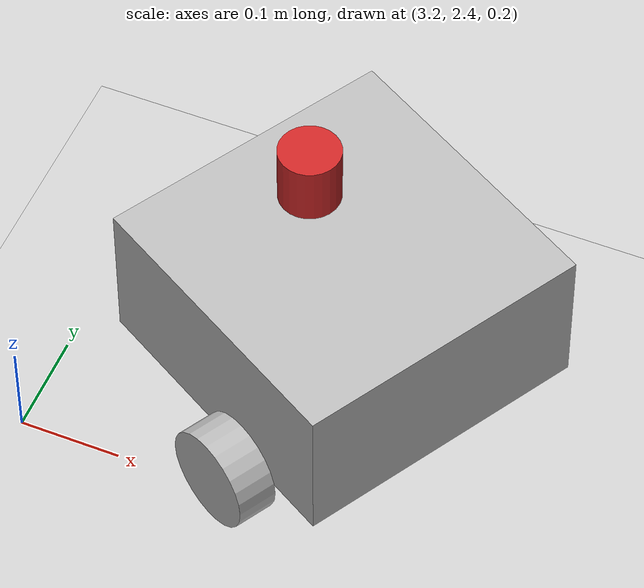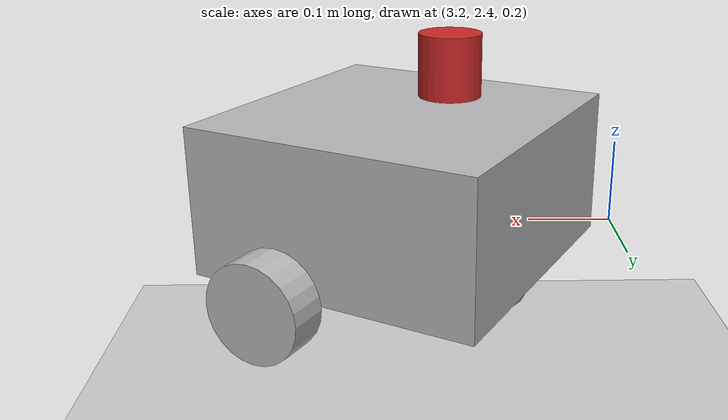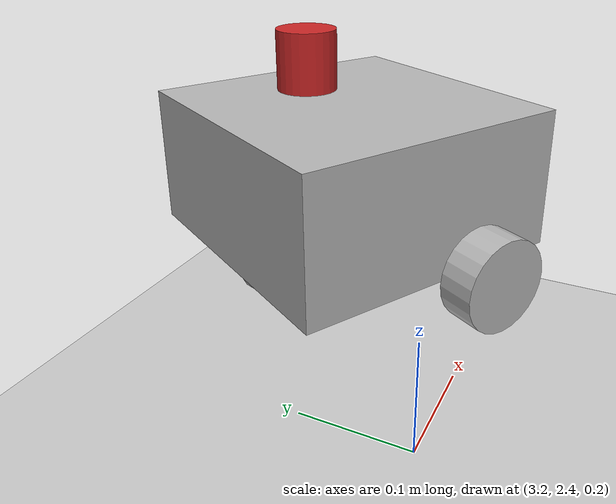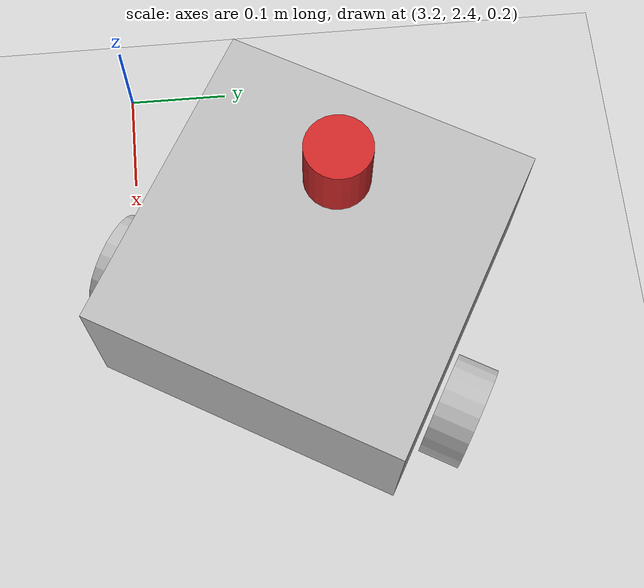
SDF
<sdf version="1.7">
 <world name="default">
  <light name="sun" type="directional">
   <pose>0 0 10 0 -0 0</pose>
   <diffuse>0.8 0.8 0.8 1</diffuse>
   <specular>0.2 0.2 0.2 1</specular>
   <attenuation>
    <range>1000</range>
    <constant>0.9</constant>
    <linear>0.01</linear>
    <quadratic>0.001</quadratic>
   </attenuation>
   <direction>-0.5 0.1 -0.9</direction>
   <spot><inner_angle>0</inner_angle><outer_angle>0</outer_angle><falloff>0</falloff></spot>
  </light>
  <model name="ground_plane">
   <static>1</static>
   <link name="link">
    <collision name="collision">
     <geometry><plane><normal>0 0 1</normal><size>100 100</size></plane></geometry>
     <surface>
      <contact><collide_bitmask>65535</collide_bitmask></contact>
      <friction><ode><mu>100</mu><mu2>50</mu2></ode></friction>
     </surface>
    </collision>
    <visual name="visual">
     <cast_shadows>0</cast_shadows>
     <geometry><plane><normal>0 0 1</normal><size>100 100</size></plane></geometry>
     <material>
      <script><uri>file://media/materials/scripts/gazebo.material</uri><name>Gazebo/Grey</name></script>
     </material>
    </visual>
   </link>
  </model>
  <gravity>0 0 -9.8</gravity>
  <magnetic_field>6e-06 2.3e-05 -4.2e-05</magnetic_field>
  <atmosphere type="adiabatic"/>
  <physics type="ode">
   <max_step_size>0.001</max_step_size>
   <real_time_factor>1</real_time_factor>
   <real_time_update_rate>1000</real_time_update_rate>
  </physics>
  <scene><ambient>0.4 0.4 0.4 1</ambient><background>0.7 0.7 0.7 1</background><shadows>1</shadows></scene>
  <spherical_coordinates>
   <surface_model>EARTH_WGS84</surface_model>
   <latitude_deg>0</latitude_deg>
   <longitude_deg>0</longitude_deg>
   <elevation>0</elevation>
   <heading_deg>0</heading_deg>
  </spherical_coordinates>
  <model name="/">
   <link name="base_link">
    <inertial>
     <pose>0.065 0 0.0625 0 -0 0</pose>
     <mass>0.6</mass>
     <inertia>
      <ixx>0.00525625</ixx>
      <ixy>0</ixy>
      <ixz>0.0005625</ixz>
      <iyy>0.00593125</iyy>
      <iyz>0</iyz>
      <izz>0.008275</izz>
     </inertia>
    </inertial>
    <collision name="base_link_fixed_joint_lump__chassis_collision">
     <pose>0.05 0 0.075 0 -0 0</pose>
     <geometry><box><size>0.3 0.3 0.15</size></box></geometry>
    </collision>
    <collision name="base_link_fixed_joint_lump__caster_wheel_collision_1">
     <pose>0.14 0 0 0 -0 0</pose>
     <geometry><sphere><radius>0.05</radius></sphere></geometry>
     <surface>
      <contact><ode><kp>1e+07</kp><kd>1</kd></ode></contact>
      <friction><ode><mu>0</mu><mu2>0</mu2><fdir1>1 0 0</fdir1></ode></friction>
     </surface>
    </collision>
    <collision name="base_link_fixed_joint_lump__lidar_link_collision_2">
     <pose>0.1 0 0.2 0 -0 0</pose>
     <geometry><cylinder><length>0.06</length><radius>0.03</radius></cylinder></geometry>
    </collision>
    <visual name="base_link_fixed_joint_lump__chassis_visual">
     <pose>0.05 0 0.075 0 -0 0</pose>
     <geometry><box><size>0.3 0.3 0.15</size></box></geometry>
    </visual>
    <visual name="base_link_fixed_joint_lump__caster_wheel_visual_1">
     <pose>0.14 0 0 0 -0 0</pose>
     <geometry><sphere><radius>0.05</radius></sphere></geometry>
     <material>
      <script><name>Gazebo/Grey</name><uri>file://media/materials/scripts/gazebo.material</uri></script>
     </material>
    </visual>
    <visual name="base_link_fixed_joint_lump__lidar_link_visual_2">
     <pose>0.1 0 0.2 0 -0 0</pose>
     <geometry><cylinder><length>0.06</length><radius>0.03</radius></cylinder></geometry>
     <material>
      <script><name>Gazebo/Red</name><uri>file://media/materials/scripts/gazebo.material</uri></script>
     </material>
    </visual>
    <sensor name="lidar" type="ray">
     <visualize>1</visualize>
     <update_rate>10</update_rate>
     <ray>
      <scan>
       <horizontal>
        <samples>360</samples>
        <min_angle>-3.14</min_angle>
        <max_angle>3.14</max_angle>
        <resolution>1</resolution>
       </horizontal>
       <vertical><samples>1</samples><min_angle>0</min_angle><max_angle>0</max_angle></vertical>
      </scan>
      <range><min>0.3</min><max>12</max></range>
     </ray>
     <plugin name="lidar_controller" filename="libgazebo_ros_laser.so">
      <topicName>/scan</topicName>
      <frameName>lidar_link</frameName>
      <robotNamespace>/</robotNamespace>
     </plugin>
     <pose>0.1 0 0.2 0 -0 0</pose>
    </sensor>
   </link>
   <joint name="left_wheel" type="revolute">
    <pose relative_to="base_link">0 0.175 0 -1.5708 0 0</pose>
    <parent>base_link</parent>
    <child>left_wheel_link</child>
    <axis>
     <xyz>0 0 1</xyz>
     <limit><lower>-1e+16</lower><upper>1e+16</upper></limit>
     <dynamics>
      <damping>0.5</damping>
      <friction>100</friction>
      <spring_reference>0</spring_reference>
      <spring_stiffness>0</spring_stiffness>
     </dynamics>
    </axis>
    <physics><ode><limit><cfm>0</cfm><erp>0.2</erp></limit></ode></physics>
   </joint>
   <link name="left_wheel_link">
    <pose relative_to="left_wheel">0 0 0 0 -0 0</pose>
    <inertial>
     <mass>0.1</mass>
     <inertia>
      <ixx>7.58333e-05</ixx>
      <ixy>0</ixy>
      <ixz>0</ixz>
      <iyy>7.58333e-05</iyy>
      <iyz>0</iyz>
      <izz>0.000125</izz>
     </inertia>
    </inertial>
    <collision name="left_wheel_link_collision">
     <geometry><cylinder><length>0.04</length><radius>0.05</radius></cylinder></geometry>
    </collision>
    <visual name="left_wheel_link_visual">
     <geometry><cylinder><length>0.04</length><radius>0.05</radius></cylinder></geometry>
    </visual>
   </link>
   <joint name="right_wheel" type="revolute">
    <pose relative_to="base_link">0 -0.175 0 1.5708 -0 0</pose>
    <parent>base_link</parent>
    <child>right_wheel_link</child>
    <axis>
     <xyz>0 0 -1</xyz>
     <limit><lower>-1e+16</lower><upper>1e+16</upper></limit>
     <dynamics>
      <damping>0.5</damping>
      <friction>100</friction>
      <spring_reference>0</spring_reference>
      <spring_stiffness>0</spring_stiffness>
     </dynamics>
    </axis>
    <physics><ode><limit><cfm>0</cfm><erp>0.2</erp></limit></ode></physics>
   </joint>
   <link name="right_wheel_link">
    <pose relative_to="right_wheel">0 0 0 0 -0 0</pose>
    <inertial>
     <mass>0.1</mass>
     <inertia>
      <ixx>7.58333e-05</ixx>
      <ixy>0</ixy>
      <ixz>0</ixz>
      <iyy>7.58333e-05</iyy>
      <iyz>0</iyz>
      <izz>0.000125</izz>
     </inertia>
    </inertial>
    <collision name="right_wheel_link_collision">
     <geometry><cylinder><length>0.04</length><radius>0.05</radius></cylinder></geometry>
    </collision>
    <visual name="right_wheel_link_visual">
     <geometry><cylinder><length>0.04</length><radius>0.05</radius></cylinder></geometry>
    </visual>
   </link>
   <static>0</static>
   <plugin name="gazebo_ros_control" filename="libgazebo_ros_control.so">
    <robotNamespace>/</robotNamespace>
    <legacyModeNS>1</legacyModeNS>
   </plugin>
   <pose>3.49638 2.55011 0.2398 0 3e-06 2.62659</pose>
  </model>
 </world>
</sdf>
